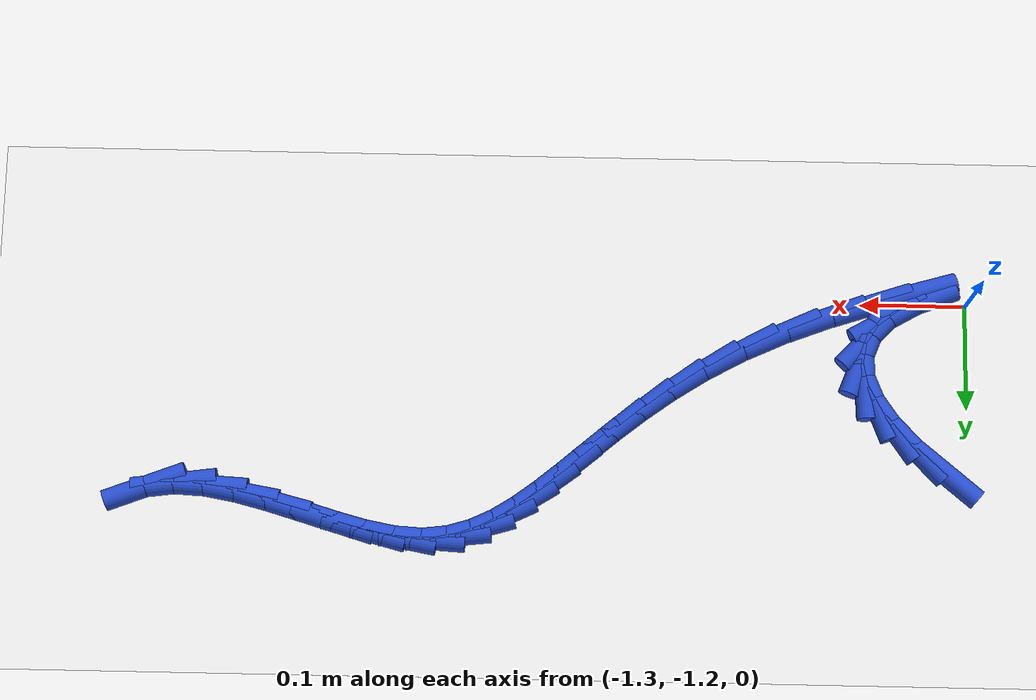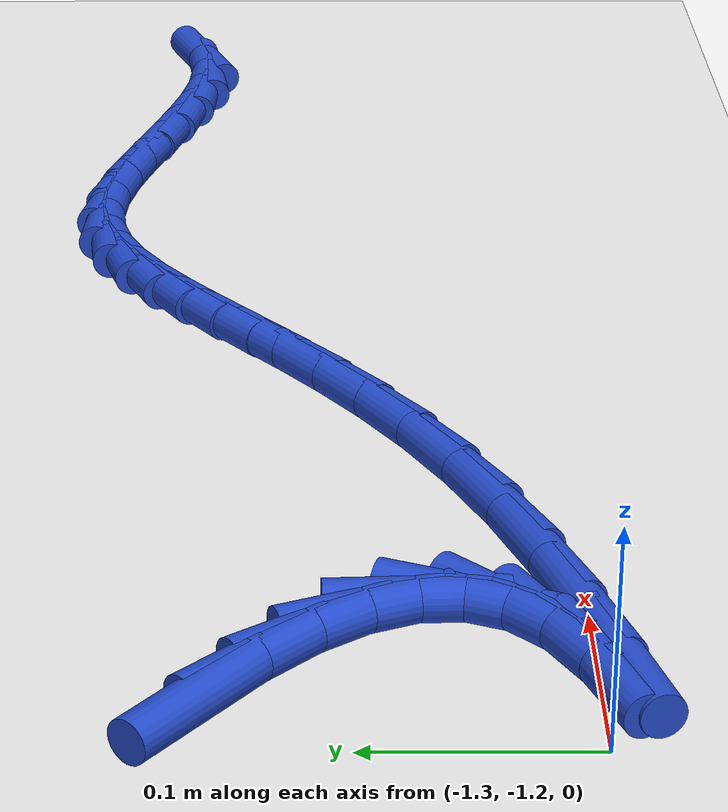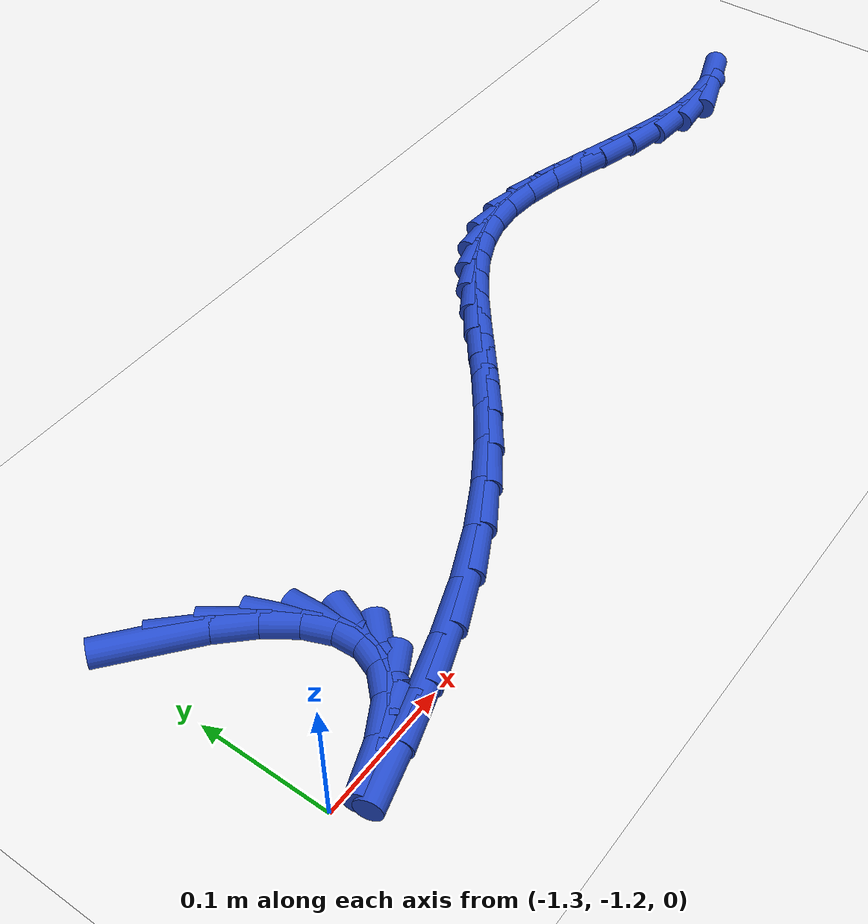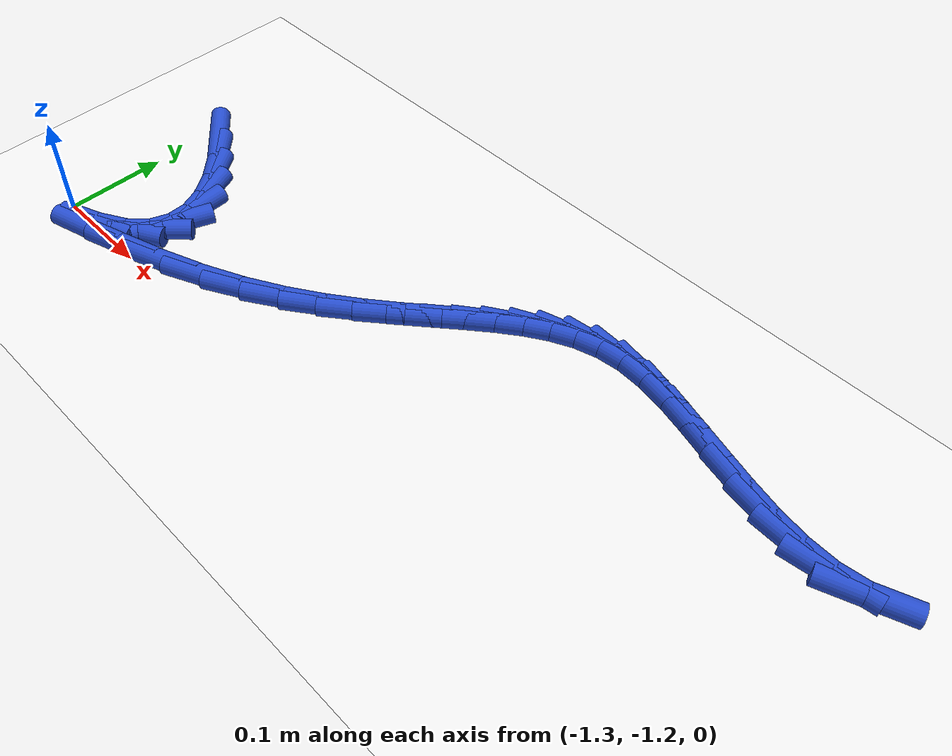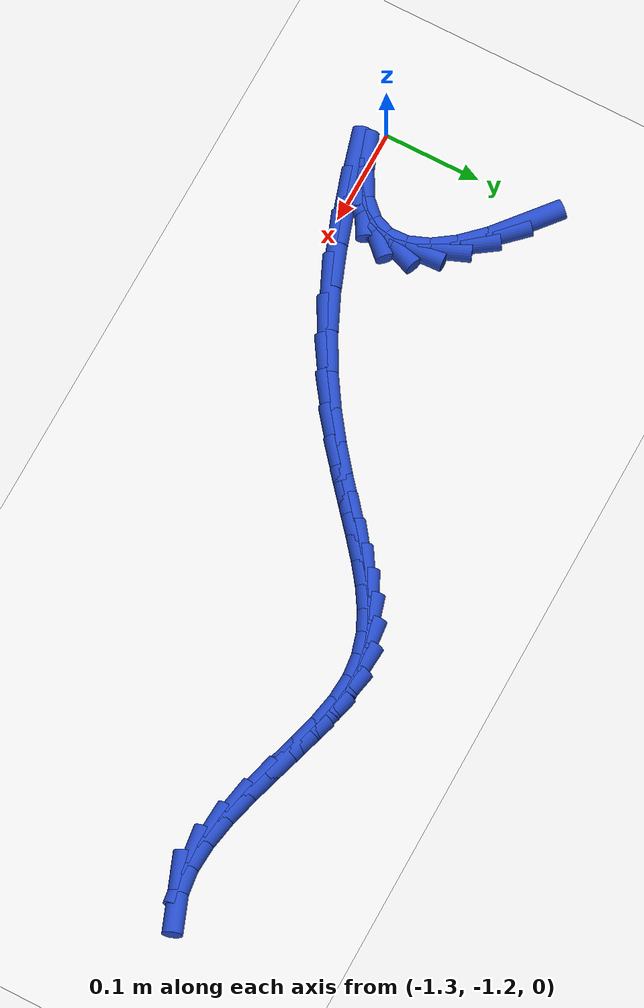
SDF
<sdf version="1.6">
 <world name="default">
  <model name="ground_plane">
   <static>1</static>
   <link name="link">
    <collision name="collision">
     <geometry><plane><normal>0 0 1</normal><size>100 100</size></plane></geometry>
     <surface><friction><ode><mu>100</mu><mu2>50</mu2></ode></friction></surface>
    </collision>
    <visual name="visual">
     <cast_shadows>0</cast_shadows>
     <geometry><plane><normal>0 0 1</normal><size>100 100</size></plane></geometry>
     <material>
      <script><uri>file://media/materials/scripts/gazebo.material</uri><name>Gazebo/WhiteGlow</name></script>
     </material>
    </visual>
   </link>
  </model>
  <model name="line">
   <link name="link_199">
    <pose>-1.276752913560769 -1.0387182728839188 0.01 0 1.57 -0.6903940321870953</pose>
    <collision name="collision">
     <geometry><cylinder><radius>0.01</radius><length>0.08</length></cylinder></geometry>
    </collision>
    <visual name="visual">
     <material>
      <script><name>Gazebo/Blue</name><uri>file://media/materials/scripts/gazebo.material</uri></script>
     </material>
     <geometry><cylinder><radius>0.01</radius><length>0.08</length></cylinder></geometry>
    </visual>
   </link>
   <link name="link_200">
    <pose>-1.24959450162615 -1.061151087457698 0.01 0 1.57 -0.8046520570628498</pose>
    <collision name="collision">
     <geometry><cylinder><radius>0.01</radius><length>0.08</length></cylinder></geometry>
    </collision>
    <visual name="visual">
     <material>
      <script><name>Gazebo/Blue</name><uri>file://media/materials/scripts/gazebo.material</uri></script>
     </material>
     <geometry><cylinder><radius>0.01</radius><length>0.08</length></cylinder></geometry>
    </visual>
   </link>
   <link name="link_201">
    <pose>-1.2278548061860035 -1.0837444728151402 0.01 0 1.57 -0.9621557376123003</pose>
    <collision name="collision">
     <geometry><cylinder><radius>0.01</radius><length>0.08</length></cylinder></geometry>
    </collision>
    <visual name="visual">
     <material>
      <script><name>Gazebo/Blue</name><uri>file://media/materials/scripts/gazebo.material</uri></script>
     </material>
     <geometry><cylinder><radius>0.01</radius><length>0.08</length></cylinder></geometry>
    </visual>
   </link>
   <link name="link_202">
    <pose>-1.2122841604743928 -1.1060872848226684 0.01 0 1.57 -1.1911321815179507</pose>
    <collision name="collision">
     <geometry><cylinder><radius>0.01</radius><length>0.08</length></cylinder></geometry>
    </collision>
    <visual name="visual">
     <material>
      <script><name>Gazebo/Blue</name><uri>file://media/materials/scripts/gazebo.material</uri></script>
     </material>
     <geometry><cylinder><radius>0.01</radius><length>0.08</length></cylinder></geometry>
    </visual>
   </link>
   <link name="link_203">
    <pose>-1.203632897725381 -1.1277683793467062 0.01 0 1.57 -1.5232034375836616</pose>
    <collision name="collision">
     <geometry><cylinder><radius>0.01</radius><length>0.08</length></cylinder></geometry>
    </collision>
    <visual name="visual">
     <material>
      <script><name>Gazebo/Blue</name><uri>file://media/materials/scripts/gazebo.material</uri></script>
     </material>
     <geometry><cylinder><radius>0.01</radius><length>0.08</length></cylinder></geometry>
    </visual>
   </link>
   <link name="link_204">
    <pose>-1.2026513511730297 -1.1483766122536752 0.01 0 1.57 1.1998458369114224</pose>
    <collision name="collision">
     <geometry><cylinder><radius>0.01</radius><length>0.08</length></cylinder></geometry>
    </collision>
    <visual name="visual">
     <material>
      <script><name>Gazebo/Blue</name><uri>file://media/materials/scripts/gazebo.material</uri></script>
     </material>
     <geometry><cylinder><radius>0.01</radius><length>0.08</length></cylinder></geometry>
    </visual>
   </link>
   <link name="link_205">
    <pose>-1.2100898540514027 -1.167500839409999 0.01 0 1.57 0.8037243936188468</pose>
    <collision name="collision">
     <geometry><cylinder><radius>0.01</radius><length>0.08</length></cylinder></geometry>
    </collision>
    <visual name="visual">
     <material>
      <script><name>Gazebo/Blue</name><uri>file://media/materials/scripts/gazebo.material</uri></script>
     </material>
     <geometry><cylinder><radius>0.01</radius><length>0.08</length></cylinder></geometry>
    </visual>
   </link>
   <link name="link_206">
    <pose>-1.2266987395945625 -1.1847299166821008 0.01 0 1.57 0.5170620708637409</pose>
    <collision name="collision">
     <geometry><cylinder><radius>0.01</radius><length>0.08</length></cylinder></geometry>
    </collision>
    <visual name="visual">
     <material>
      <script><name>Gazebo/Blue</name><uri>file://media/materials/scripts/gazebo.material</uri></script>
     </material>
     <geometry><cylinder><radius>0.01</radius><length>0.08</length></cylinder></geometry>
    </visual>
   </link>
   <link name="link_207">
    <pose>-1.2529484741067827 -1.1996572825540275 0.01 0 1.57 0.3656663398772504</pose>
    <collision name="collision">
     <geometry><cylinder><radius>0.01</radius><length>0.08</length></cylinder></geometry>
    </collision>
    <visual name="visual">
     <material>
      <script><name>Gazebo/Blue</name><uri>file://media/materials/scripts/gazebo.material</uri></script>
     </material>
     <geometry><cylinder><radius>0.01</radius><length>0.08</length></cylinder></geometry>
    </visual>
   </link>
   <link name="link_215">
    <pose>-1.251992446334383 -1.2098446649697798 0.01 0 1.57 0.2785082779534624</pose>
    <collision name="collision">
     <geometry><cylinder><radius>0.01</radius><length>0.08</length></cylinder></geometry>
    </collision>
    <visual name="visual">
     <material>
      <script><name>Gazebo/Blue</name><uri>file://media/materials/scripts/gazebo.material</uri></script>
     </material>
     <geometry><cylinder><radius>0.01</radius><length>0.08</length></cylinder></geometry>
    </visual>
   </link>
   <link name="link_216">
    <pose>-1.2108340615814022 -1.1980758385640824 0.01 0 1.57 0.3146292495862431</pose>
    <collision name="collision">
     <geometry><cylinder><radius>0.01</radius><length>0.08</length></cylinder></geometry>
    </collision>
    <visual name="visual">
     <material>
      <script><name>Gazebo/Blue</name><uri>file://media/materials/scripts/gazebo.material</uri></script>
     </material>
     <geometry><cylinder><radius>0.01</radius><length>0.08</length></cylinder></geometry>
    </visual>
   </link>
   <link name="link_217">
    <pose>-1.1678664807746608 -1.1840924958174146 0.01 0 1.57 0.3622783278024454</pose>
    <collision name="collision">
     <geometry><cylinder><radius>0.01</radius><length>0.08</length></cylinder></geometry>
    </collision>
    <visual name="visual">
     <material>
      <script><name>Gazebo/Blue</name><uri>file://media/materials/scripts/gazebo.material</uri></script>
     </material>
     <geometry><cylinder><radius>0.01</radius><length>0.08</length></cylinder></geometry>
    </visual>
   </link>
   <link name="link_218">
    <pose>-1.1257311425309067 -1.1681229410487601 0.01 0 1.57 0.4283541879502115</pose>
    <collision name="collision">
     <geometry><cylinder><radius>0.01</radius><length>0.08</length></cylinder></geometry>
    </collision>
    <visual name="visual">
     <material>
      <script><name>Gazebo/Blue</name><uri>file://media/materials/scripts/gazebo.material</uri></script>
     </material>
     <geometry><cylinder><radius>0.01</radius><length>0.08</length></cylinder></geometry>
    </visual>
   </link>
   <link name="link_219">
    <pose>-1.0869324246434673 -1.150406261429203 0.01 0 1.57 0.5025476293195266</pose>
    <collision name="collision">
     <geometry><cylinder><radius>0.01</radius><length>0.08</length></cylinder></geometry>
    </collision>
    <visual name="visual">
     <material>
      <script><name>Gazebo/Blue</name><uri>file://media/materials/scripts/gazebo.material</uri></script>
     </material>
     <geometry><cylinder><radius>0.01</radius><length>0.08</length></cylinder></geometry>
    </visual>
   </link>
   <link name="link_220">
    <pose>-1.0522069494336714 -1.131320617027025 0.01 0 1.57 0.57038496560664</pose>
    <collision name="collision">
     <geometry><cylinder><radius>0.01</radius><length>0.08</length></cylinder></geometry>
    </collision>
    <visual name="visual">
     <material>
      <script><name>Gazebo/Blue</name><uri>file://media/materials/scripts/gazebo.material</uri></script>
     </material>
     <geometry><cylinder><radius>0.01</radius><length>0.08</length></cylinder></geometry>
    </visual>
   </link>
   <link name="link_221">
    <pose>-1.0210621643999442 -1.111340869579089 0.01 0 1.57 0.6281930904209427</pose>
    <collision name="collision">
     <geometry><cylinder><radius>0.01</radius><length>0.08</length></cylinder></geometry>
    </collision>
    <visual name="visual">
     <material>
      <script><name>Gazebo/Blue</name><uri>file://media/materials/scripts/gazebo.material</uri></script>
     </material>
     <geometry><cylinder><radius>0.01</radius><length>0.08</length></cylinder></geometry>
    </visual>
   </link>
   <link name="link_222">
    <pose>-0.9929806506875248 -1.09094383710854 0.01 0 1.57 0.6725635006754788</pose>
    <collision name="collision">
     <geometry><cylinder><radius>0.01</radius><length>0.08</length></cylinder></geometry>
    </collision>
    <visual name="visual">
     <material>
      <script><name>Gazebo/Blue</name><uri>file://media/materials/scripts/gazebo.material</uri></script>
     </material>
     <geometry><cylinder><radius>0.01</radius><length>0.08</length></cylinder></geometry>
    </visual>
   </link>
   <link name="link_223">
    <pose>-0.9674449894416502 -1.0706063376385233 0.01 0 1.57 0.7000319456790766</pose>
    <collision name="collision">
     <geometry><cylinder><radius>0.01</radius><length>0.08</length></cylinder></geometry>
    </collision>
    <visual name="visual">
     <material>
      <script><name>Gazebo/Blue</name><uri>file://media/materials/scripts/gazebo.material</uri></script>
     </material>
     <geometry><cylinder><radius>0.01</radius><length>0.08</length></cylinder></geometry>
    </visual>
   </link>
   <link name="link_224">
    <pose>-0.9439377618075586 -1.0508051891921841 0.01 0 1.57 0.7068961684862217</pose>
    <collision name="collision">
     <geometry><cylinder><radius>0.01</radius><length>0.08</length></cylinder></geometry>
    </collision>
    <visual name="visual">
     <material>
      <script><name>Gazebo/Blue</name><uri>file://media/materials/scripts/gazebo.material</uri></script>
     </material>
     <geometry><cylinder><radius>0.01</radius><length>0.08</length></cylinder></geometry>
    </visual>
   </link>
   <link name="link_225">
    <pose>-0.9219415489304876 -1.0320172097926674 0.01 0 1.57 0.6889731718526946</pose>
    <collision name="collision">
     <geometry><cylinder><radius>0.01</radius><length>0.08</length></cylinder></geometry>
    </collision>
    <visual name="visual">
     <material>
      <script><name>Gazebo/Blue</name><uri>file://media/materials/scripts/gazebo.material</uri></script>
     </material>
     <geometry><cylinder><radius>0.01</radius><length>0.08</length></cylinder></geometry>
    </visual>
   </link>
   <link name="link_226">
    <pose>-0.9009389319556742 -1.0147192174631183 0.01 0 1.57 0.6415138187884625</pose>
    <collision name="collision">
     <geometry><cylinder><radius>0.01</radius><length>0.08</length></cylinder></geometry>
    </collision>
    <visual name="visual">
     <material>
      <script><name>Gazebo/Blue</name><uri>file://media/materials/scripts/gazebo.material</uri></script>
     </material>
     <geometry><cylinder><radius>0.01</radius><length>0.08</length></cylinder></geometry>
    </visual>
   </link>
   <link name="link_227">
    <pose>-0.880412492028357 -0.9993880302266822 0.01 0 1.57 0.5597439786526152</pose>
    <collision name="collision">
     <geometry><cylinder><radius>0.01</radius><length>0.08</length></cylinder></geometry>
    </collision>
    <visual name="visual">
     <material>
      <script><name>Gazebo/Blue</name><uri>file://media/materials/scripts/gazebo.material</uri></script>
     </material>
     <geometry><cylinder><radius>0.01</radius><length>0.08</length></cylinder></geometry>
    </visual>
   </link>
   <link name="link_228">
    <pose>-0.8598448102937741 -0.9865004661065051 0.01 0 1.57 0.4408231393486574</pose>
    <collision name="collision">
     <geometry><cylinder><radius>0.01</radius><length>0.08</length></cylinder></geometry>
    </collision>
    <visual name="visual">
     <material>
      <script><name>Gazebo/Blue</name><uri>file://media/materials/scripts/gazebo.material</uri></script>
     </material>
     <geometry><cylinder><radius>0.01</radius><length>0.08</length></cylinder></geometry>
    </visual>
   </link>
   <link name="link_229">
    <pose>-0.8387184678971622 -0.9765333431257309 0.01 0 1.57 0.2876980183406557</pose>
    <collision name="collision">
     <geometry><cylinder><radius>0.01</radius><length>0.08</length></cylinder></geometry>
    </collision>
    <visual name="visual">
     <material>
      <script><name>Gazebo/Blue</name><uri>file://media/materials/scripts/gazebo.material</uri></script>
     </material>
     <geometry><cylinder><radius>0.01</radius><length>0.08</length></cylinder></geometry>
    </visual>
   </link>
   <link name="link_230">
    <pose>-0.8165160459837595 -0.9699634793075054 0.01 0 1.57 0.112806813955755</pose>
    <collision name="collision">
     <geometry><cylinder><radius>0.01</radius><length>0.08</length></cylinder></geometry>
    </collision>
    <visual name="visual">
     <material>
      <script><name>Gazebo/Blue</name><uri>file://media/materials/scripts/gazebo.material</uri></script>
     </material>
     <geometry><cylinder><radius>0.01</radius><length>0.08</length></cylinder></geometry>
    </visual>
   </link>
   <link name="link_231">
    <pose>-0.7927201256988035 -0.9672676926749737 0.01 0 1.57 -0.061001190302898245</pose>
    <collision name="collision">
     <geometry><cylinder><radius>0.01</radius><length>0.08</length></cylinder></geometry>
    </collision>
    <visual name="visual">
     <material>
      <script><name>Gazebo/Blue</name><uri>file://media/materials/scripts/gazebo.material</uri></script>
     </material>
     <geometry><cylinder><radius>0.01</radius><length>0.08</length></cylinder></geometry>
    </visual>
   </link>
   <link name="link_232">
    <pose>-0.7668593380149095 -0.9688471911731552 0.01 0 1.57 -0.18801149695732713</pose>
    <collision name="collision">
     <geometry><cylinder><radius>0.01</radius><length>0.08</length></cylinder></geometry>
    </collision>
    <visual name="visual">
     <material>
      <script><name>Gazebo/Blue</name><uri>file://media/materials/scripts/gazebo.material</uri></script>
     </material>
     <geometry><cylinder><radius>0.01</radius><length>0.08</length></cylinder></geometry>
    </visual>
   </link>
   <link name="link_233">
    <pose>-0.7390500646091697 -0.974138143805233 0.01 0 1.57 -0.2598458232464963</pose>
    <collision name="collision">
     <geometry><cylinder><radius>0.01</radius><length>0.08</length></cylinder></geometry>
    </collision>
    <visual name="visual">
     <material>
      <script><name>Gazebo/Blue</name><uri>file://media/materials/scripts/gazebo.material</uri></script>
     </material>
     <geometry><cylinder><radius>0.01</radius><length>0.08</length></cylinder></geometry>
    </visual>
   </link>
   <link name="link_234">
    <pose>-0.7098143548647586 -0.9819106461340148 0.01 0 1.57 -0.29058295767065373</pose>
    <collision name="collision">
     <geometry><cylinder><radius>0.01</radius><length>0.08</length></cylinder></geometry>
    </collision>
    <visual name="visual">
     <material>
      <script><name>Gazebo/Blue</name><uri>file://media/materials/scripts/gazebo.material</uri></script>
     </material>
     <geometry><cylinder><radius>0.01</radius><length>0.08</length></cylinder></geometry>
    </visual>
   </link>
   <link name="link_235">
    <pose>-0.679682314757467 -0.9909215654512871 0.01 0 1.57 -0.28714130292903506</pose>
    <collision name="collision">
     <geometry><cylinder><radius>0.01</radius><length>0.08</length></cylinder></geometry>
    </collision>
    <visual name="visual">
     <material>
      <script><name>Gazebo/Blue</name><uri>file://media/materials/scripts/gazebo.material</uri></script>
     </material>
     <geometry><cylinder><radius>0.01</radius><length>0.08</length></cylinder></geometry>
    </visual>
   </link>
   <link name="link_236">
    <pose>-0.6491840502630826 -0.9999277690488376 0.01 0 1.57 -0.2503934827476985</pose>
    <collision name="collision">
     <geometry><cylinder><radius>0.01</radius><length>0.08</length></cylinder></geometry>
    </collision>
    <visual name="visual">
     <material>
      <script><name>Gazebo/Blue</name><uri>file://media/materials/scripts/gazebo.material</uri></script>
     </material>
     <geometry><cylinder><radius>0.01</radius><length>0.08</length></cylinder></geometry>
    </visual>
   </link>
   <link name="link_237">
    <pose>-0.6188496673573941 -1.0076861242184543 0.01 0 1.57 -0.1758732489322031</pose>
    <collision name="collision">
     <geometry><cylinder><radius>0.01</radius><length>0.08</length></cylinder></geometry>
    </collision>
    <visual name="visual">
     <material>
      <script><name>Gazebo/Blue</name><uri>file://media/materials/scripts/gazebo.material</uri></script>
     </material>
     <geometry><cylinder><radius>0.01</radius><length>0.08</length></cylinder></geometry>
    </visual>
   </link>
   <link name="link_238">
    <pose>-0.5892092720161908 -1.0129534982519242 0.01 0 1.57 -0.05390479147508502</pose>
    <collision name="collision">
     <geometry><cylinder><radius>0.01</radius><length>0.08</length></cylinder></geometry>
    </collision>
    <visual name="visual">
     <material>
      <script><name>Gazebo/Blue</name><uri>file://media/materials/scripts/gazebo.material</uri></script>
     </material>
     <geometry><cylinder><radius>0.01</radius><length>0.08</length></cylinder></geometry>
    </visual>
   </link>
   <link name="link_239">
    <pose>-0.5607929702152609 -1.0144867584410349 0.01 0 1.57 0.12846028346837435</pose>
    <collision name="collision">
     <geometry><cylinder><radius>0.01</radius><length>0.08</length></cylinder></geometry>
    </collision>
    <visual name="visual">
     <material>
      <script><name>Gazebo/Blue</name><uri>file://media/materials/scripts/gazebo.material</uri></script>
     </material>
     <geometry><cylinder><radius>0.01</radius><length>0.08</length></cylinder></geometry>
    </visual>
   </link>
   <link name="link_240">
    <pose>-0.5341308679303939 -1.011042772077574 0.01 0 1.57 0.3634088661753297</pose>
    <collision name="collision">
     <geometry><cylinder><radius>0.01</radius><length>0.08</length></cylinder></geometry>
    </collision>
    <visual name="visual">
     <material>
      <script><name>Gazebo/Blue</name><uri>file://media/materials/scripts/gazebo.material</uri></script>
     </material>
     <geometry><cylinder><radius>0.01</radius><length>0.08</length></cylinder></geometry>
    </visual>
   </link>
  </model>
 </world>
</sdf>
